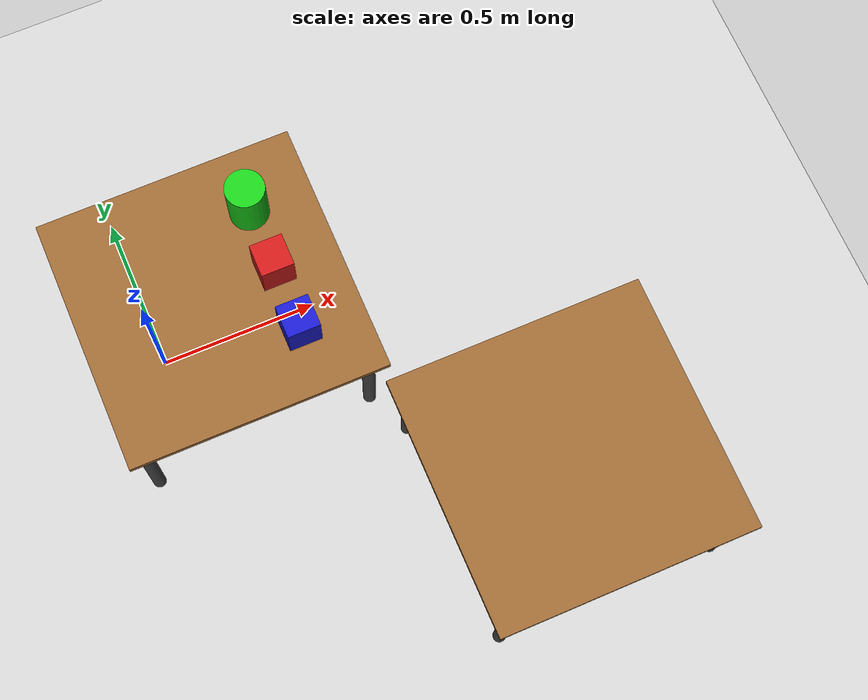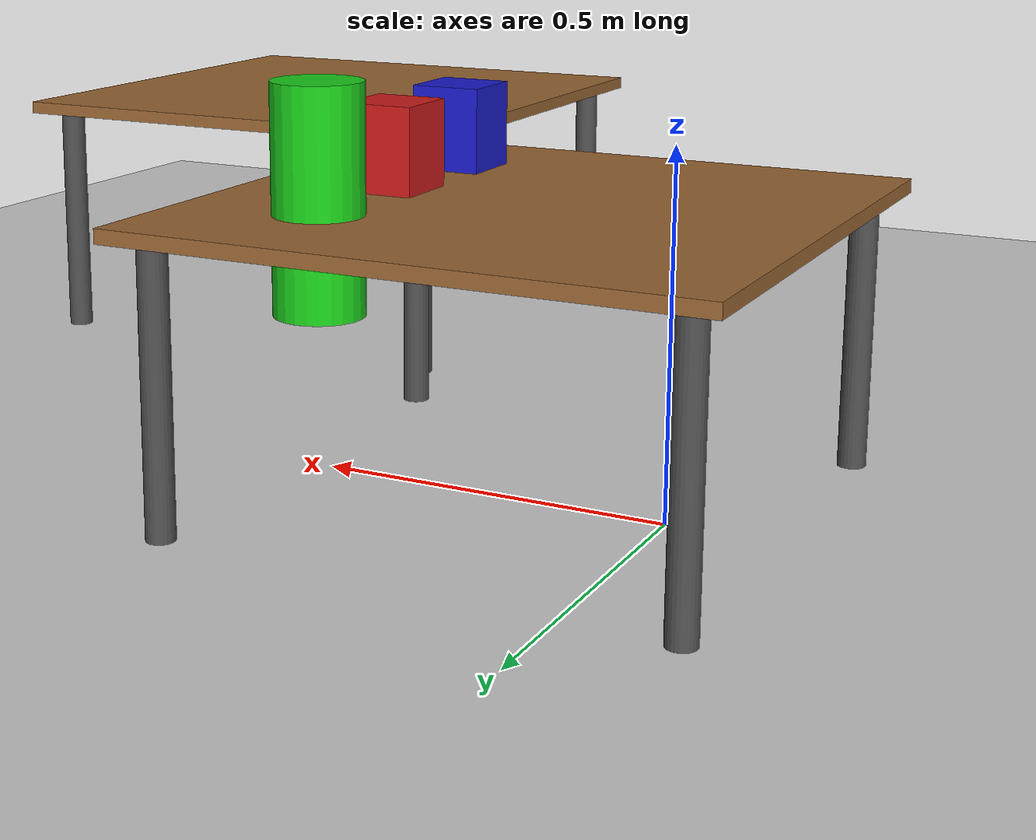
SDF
<sdf version='1.10'>
  <world name='pick_place_world'>
    <physics name='1ms' type='ignored'>
      <max_step_size>0.001</max_step_size>
      <real_time_factor>1</real_time_factor>
      <real_time_update_rate>1000</real_time_update_rate>
    </physics>
    <plugin name='gz::sim::systems::Physics' filename='gz-sim-physics-system'/>
    <plugin name='gz::sim::systems::UserCommands' filename='gz-sim-user-commands-system'/>
    <plugin name='gz::sim::systems::SceneBroadcaster' filename='gz-sim-scene-broadcaster-system'/>
    <plugin name='gz::sim::systems::Contact' filename='gz-sim-contact-system'/>
    <plugin name='gz::sim::systems::Sensors' filename='gz-sim-sensors-system'>
      <render_engine>ogre2</render_engine>
    </plugin>
    <gravity>0 0 -9.8000000000000007</gravity>
    <magnetic_field>5.5644999999999998e-06 2.2875799999999999e-05 -4.2388400000000002e-05</magnetic_field>
    <atmosphere type='adiabatic'/>
    <scene>
      <ambient>0.400000006 0.400000006 0.400000006 1</ambient>
      <background>0.699999988 0.699999988 0.699999988 1</background>
      <shadows>true</shadows>
    </scene>
    <model name='ground_plane'>
      <static>true</static>
      <link name='link'>
        <collision name='collision'>
          <geometry>
            <plane>
              <normal>0 0 1</normal>
              <size>100 100</size>
            </plane>
          </geometry>
          <surface>
            <friction>
              <ode/>
            </friction>
            <bounce/>
            <contact/>
          </surface>
        </collision>
        <visual name='visual'>
          <geometry>
            <plane>
              <normal>0 0 1</normal>
              <size>100 100</size>
            </plane>
          </geometry>
          <material>
            <ambient>0.800000012 0.800000012 0.800000012 1</ambient>
            <diffuse>0.800000012 0.800000012 0.800000012 1</diffuse>
          </material>
        </visual>
        <pose>0 0 0 0 0 0</pose>
        <inertial>
          <pose>0 0 0 0 0 0</pose>
          <mass>1</mass>
          <inertia>
            <ixx>1</ixx>
            <ixy>0</ixy>
            <ixz>0</ixz>
            <iyy>1</iyy>
            <iyz>0</iyz>
            <izz>1</izz>
          </inertia>
        </inertial>
        <enable_wind>false</enable_wind>
      </link>
      <pose>0 0 0 0 0 0</pose>
      <self_collide>false</self_collide>
    </model>
    <model name='table'>
      <static>true</static>
      <pose>0.20000000000000001 0 0 0 0 0</pose>
      <link name='table_link'>
        <collision name='collision'>
          <pose>0 0 0.40000000000000002 0 0 0</pose>
          <geometry>
            <box>
              <size>0.80000000000000004 0.80000000000000004 0.02</size>
            </box>
          </geometry>
          <surface>
            <friction>
              <ode/>
            </friction>
            <bounce/>
            <contact/>
          </surface>
        </collision>
        <visual name='visual'>
          <pose>0 0 0.40000000000000002 0 0 0</pose>
          <geometry>
            <box>
              <size>0.80000000000000004 0.80000000000000004 0.02</size>
            </box>
          </geometry>
          <material>
            <ambient>0.600000024 0.400000006 0.200000003 1</ambient>
            <diffuse>0.600000024 0.400000006 0.200000003 1</diffuse>
          </material>
        </visual>
        <visual name='leg1'>
          <pose>0.34999999999999998 0.34999999999999998 0.20000000000000001 0 0 0</pose>
          <geometry>
            <cylinder>
              <radius>0.02</radius>
              <length>0.40000000000000002</length>
            </cylinder>
          </geometry>
          <material>
            <ambient>0.300000012 0.300000012 0.300000012 1</ambient>
          </material>
        </visual>
        <collision name='leg1_col'>
          <pose>0.34999999999999998 0.34999999999999998 0.20000000000000001 0 0 0</pose>
          <geometry>
            <cylinder>
              <radius>0.02</radius>
              <length>0.40000000000000002</length>
            </cylinder>
          </geometry>
          <surface>
            <friction>
              <ode/>
            </friction>
            <bounce/>
            <contact/>
          </surface>
        </collision>
        <visual name='leg2'>
          <pose>-0.34999999999999998 0.34999999999999998 0.20000000000000001 0 0 0</pose>
          <geometry>
            <cylinder>
              <radius>0.02</radius>
              <length>0.40000000000000002</length>
            </cylinder>
          </geometry>
          <material>
            <ambient>0.300000012 0.300000012 0.300000012 1</ambient>
          </material>
        </visual>
        <collision name='leg2_col'>
          <pose>-0.34999999999999998 0.34999999999999998 0.20000000000000001 0 0 0</pose>
          <geometry>
            <cylinder>
              <radius>0.02</radius>
              <length>0.40000000000000002</length>
            </cylinder>
          </geometry>
          <surface>
            <friction>
              <ode/>
            </friction>
            <bounce/>
            <contact/>
          </surface>
        </collision>
        <visual name='leg3'>
          <pose>0.34999999999999998 -0.34999999999999998 0.20000000000000001 0 0 0</pose>
          <geometry>
            <cylinder>
              <radius>0.02</radius>
              <length>0.40000000000000002</length>
            </cylinder>
          </geometry>
          <material>
            <ambient>0.300000012 0.300000012 0.300000012 1</ambient>
          </material>
        </visual>
        <collision name='leg3_col'>
          <pose>0.34999999999999998 -0.34999999999999998 0.20000000000000001 0 0 0</pose>
          <geometry>
            <cylinder>
              <radius>0.02</radius>
              <length>0.40000000000000002</length>
            </cylinder>
          </geometry>
          <surface>
            <friction>
              <ode/>
            </friction>
            <bounce/>
            <contact/>
          </surface>
        </collision>
        <visual name='leg4'>
          <pose>-0.34999999999999998 -0.34999999999999998 0.20000000000000001 0 0 0</pose>
          <geometry>
            <cylinder>
              <radius>0.02</radius>
              <length>0.40000000000000002</length>
            </cylinder>
          </geometry>
          <material>
            <ambient>0.300000012 0.300000012 0.300000012 1</ambient>
          </material>
        </visual>
        <collision name='leg4_col'>
          <pose>-0.34999999999999998 -0.34999999999999998 0.20000000000000001 0 0 0</pose>
          <geometry>
            <cylinder>
              <radius>0.02</radius>
              <length>0.40000000000000002</length>
            </cylinder>
          </geometry>
          <surface>
            <friction>
              <ode/>
            </friction>
            <bounce/>
            <contact/>
          </surface>
        </collision>
        <pose>0 0 0 0 0 0</pose>
        <inertial>
          <pose>0 0 0 0 0 0</pose>
          <mass>1</mass>
          <inertia>
            <ixx>1</ixx>
            <ixy>0</ixy>
            <ixz>0</ixz>
            <iyy>1</iyy>
            <iyz>0</iyz>
            <izz>1</izz>
          </inertia>
        </inertial>
        <enable_wind>false</enable_wind>
      </link>
      <self_collide>false</self_collide>
    </model>
    <model name='red_box'>
      <pose>0.4 0 0.43 0 0 0</pose>
      <link name='link'>
        <inertial>
          <mass>0.10000000000000001</mass>
          <inertia>
            <ixx>0.0001</ixx>
            <ixy>0</ixy>
            <ixz>0</ixz>
            <iyy>0.0001</iyy>
            <iyz>0</iyz>
            <izz>0.0001</izz>
          </inertia>
          <pose>0 0 0 0 0 0</pose>
        </inertial>
        <collision name='collision'>
          <geometry>
            <box>
              <size>0.1 0.1 0.2</size>
            </box>
          </geometry>
          <surface>
            <friction>
              <ode>
                <mu>1</mu>
                <mu2>1</mu2>
              </ode>
            </friction>
            <bounce/>
            <contact/>
          </surface>
        </collision>
        <visual name='visual'>
          <geometry>
            <box>
              <size>0.1 0.1 0.2</size>
            </box>
          </geometry>
          <material>
            <ambient>0.800000012 0.100000001 0.100000001 1</ambient>
            <diffuse>0.800000012 0.100000001 0.100000001 1</diffuse>
          </material>
        </visual>
        <pose>0 0 0 0 0 0</pose>
        <enable_wind>false</enable_wind>
      </link>
      <static>false</static>
      <self_collide>false</self_collide>
    </model>
    <model name='green_cylinder'>
      <pose>0.4 0.2 0.43 0 0 0</pose>
      <link name='link'>
        <inertial>
          <mass>0.10000000000000001</mass>
          <inertia>
            <ixx>0.0001</ixx>
            <ixy>0</ixy>
            <ixz>0</ixz>
            <iyy>0.0001</iyy>
            <iyz>0</iyz>
            <izz>0.0001</izz>
          </inertia>
          <pose>0 0 0 0 0 0</pose>
        </inertial>
        <collision name='collision'>
          <geometry>
            <cylinder>
              <radius>0.05</radius>
              <length>0.2</length>
            </cylinder>
          </geometry>
          <surface>
            <friction>
              <ode>
                <mu>1</mu>
                <mu2>1</mu2>
              </ode>
            </friction>
            <bounce/>
            <contact/>
          </surface>
        </collision>
        <visual name='visual'>
          <geometry>
            <cylinder>
              <radius>0.06</radius>
              <length>0.3</length>
            </cylinder>
          </geometry>
          <material>
            <ambient>0.100000001 0.800000012 0.100000001 1</ambient>
            <diffuse>0.100000001 0.800000012 0.100000001 1</diffuse>
          </material>
        </visual>
        <pose>0 0 0 0 0 0</pose>
        <enable_wind>false</enable_wind>
      </link>
      <static>false</static>
      <self_collide>false</self_collide>
    </model>
    <model name='blue_box'>
      <pose>0.4 -0.2 0.43 0 0 0</pose>
      <link name='link'>
        <inertial>
          <mass>0.10000000000000001</mass>
          <inertia>
            <ixx>0.0001</ixx>
            <ixy>0</ixy>
            <ixz>0</ixz>
            <iyy>0.0001</iyy>
            <iyz>0</iyz>
            <izz>0.0001</izz>
          </inertia>
          <pose>0 0 0 0 0 0</pose>
        </inertial>
        <collision name='collision'>
          <geometry>
            <box>
              <size>0.1 0.1 0.2</size>
            </box>
          </geometry>
          <surface>
            <friction>
              <ode>
                <mu>1</mu>
                <mu2>1</mu2>
              </ode>
            </friction>
            <bounce/>
            <contact/>
          </surface>
        </collision>
        <visual name='visual'>
          <geometry>
            <box>
              <size>0.1 0.1 0.2</size>
            </box>
          </geometry>
          <material>
            <ambient>0.100000001 0.100000001 0.800000012 1</ambient>
            <diffuse>0.100000001 0.100000001 0.800000012 1</diffuse>
          </material>
        </visual>
        <pose>0 0 0 0 0 0</pose>
        <enable_wind>false</enable_wind>
      </link>
      <static>false</static>
      <self_collide>false</self_collide>
    </model>
    <model name='table_1'>
      <static>true</static>
      <pose>0.96810047903924068 -0.84070598979542632 0 0 0 0</pose>
      <link name='table_link'>
        <collision name='collision'>
          <pose>0 0 0.40000000000000002 0 0 0</pose>
          <geometry>
            <box>
              <size>0.80000000000000004 0.80000000000000004 0.02</size>
            </box>
          </geometry>
          <surface>
            <friction>
              <ode/>
            </friction>
            <bounce/>
            <contact/>
          </surface>
        </collision>
        <visual name='visual'>
          <pose>0 0 0.40000000000000002 0 0 0</pose>
          <geometry>
            <box>
              <size>0.80000000000000004 0.80000000000000004 0.02</size>
            </box>
          </geometry>
          <material>
            <ambient>0.600000024 0.400000006 0.200000003 1</ambient>
            <diffuse>0.600000024 0.400000006 0.200000003 1</diffuse>
          </material>
        </visual>
        <visual name='leg1'>
          <pose>0.34999999999999998 0.34999999999999998 0.20000000000000001 0 0 0</pose>
          <geometry>
            <cylinder>
              <radius>0.02</radius>
              <length>0.40000000000000002</length>
            </cylinder>
          </geometry>
          <material>
            <ambient>0.300000012 0.300000012 0.300000012 1</ambient>
          </material>
        </visual>
        <collision name='leg1_col'>
          <pose>0.34999999999999998 0.34999999999999998 0.20000000000000001 0 0 0</pose>
          <geometry>
            <cylinder>
              <radius>0.02</radius>
              <length>0.40000000000000002</length>
            </cylinder>
          </geometry>
          <surface>
            <friction>
              <ode/>
            </friction>
            <bounce/>
            <contact/>
          </surface>
        </collision>
        <visual name='leg2'>
          <pose>-0.34999999999999998 0.34999999999999998 0.20000000000000001 0 0 0</pose>
          <geometry>
            <cylinder>
              <radius>0.02</radius>
              <length>0.40000000000000002</length>
            </cylinder>
          </geometry>
          <material>
            <ambient>0.300000012 0.300000012 0.300000012 1</ambient>
          </material>
        </visual>
        <collision name='leg2_col'>
          <pose>-0.34999999999999998 0.34999999999999998 0.20000000000000001 0 0 0</pose>
          <geometry>
            <cylinder>
              <radius>0.02</radius>
              <length>0.40000000000000002</length>
            </cylinder>
          </geometry>
          <surface>
            <friction>
              <ode/>
            </friction>
            <bounce/>
            <contact/>
          </surface>
        </collision>
        <visual name='leg3'>
          <pose>0.34999999999999998 -0.34999999999999998 0.20000000000000001 0 0 0</pose>
          <geometry>
            <cylinder>
              <radius>0.02</radius>
              <length>0.40000000000000002</length>
            </cylinder>
          </geometry>
          <material>
            <ambient>0.300000012 0.300000012 0.300000012 1</ambient>
          </material>
        </visual>
        <collision name='leg3_col'>
          <pose>0.34999999999999998 -0.34999999999999998 0.20000000000000001 0 0 0</pose>
          <geometry>
            <cylinder>
              <radius>0.02</radius>
              <length>0.40000000000000002</length>
            </cylinder>
          </geometry>
          <surface>
            <friction>
              <ode/>
            </friction>
            <bounce/>
            <contact/>
          </surface>
        </collision>
        <visual name='leg4'>
          <pose>-0.34999999999999998 -0.34999999999999998 0.20000000000000001 0 0 0</pose>
          <geometry>
            <cylinder>
              <radius>0.02</radius>
              <length>0.40000000000000002</length>
            </cylinder>
          </geometry>
          <material>
            <ambient>0.300000012 0.300000012 0.300000012 1</ambient>
          </material>
        </visual>
        <collision name='leg4_col'>
          <pose>-0.34999999999999998 -0.34999999999999998 0.20000000000000001 0 0 0</pose>
          <geometry>
            <cylinder>
              <radius>0.02</radius>
              <length>0.40000000000000002</length>
            </cylinder>
          </geometry>
          <surface>
            <friction>
              <ode/>
            </friction>
            <bounce/>
            <contact/>
          </surface>
        </collision>
      </link>
      <self_collide>false</self_collide>
    </model>
    <light name='sun' type='directional'>
      <pose>0 0 10 0 0 0</pose>
      <cast_shadows>true</cast_shadows>
      <intensity>1</intensity>
      <direction>-0.5 0.10000000000000001 -0.90000000000000002</direction>
      <diffuse>0.800000012 0.800000012 0.800000012 1</diffuse>
      <specular>0.200000003 0.200000003 0.200000003 1</specular>
      <attenuation>
        <range>10</range>
        <linear>1</linear>
        <constant>1</constant>
        <quadratic>0</quadratic>
      </attenuation>
      <spot>
        <inner_angle>0</inner_angle>
        <outer_angle>0</outer_angle>
        <falloff>0</falloff>
      </spot>
    </light>
  </world>
</sdf>
